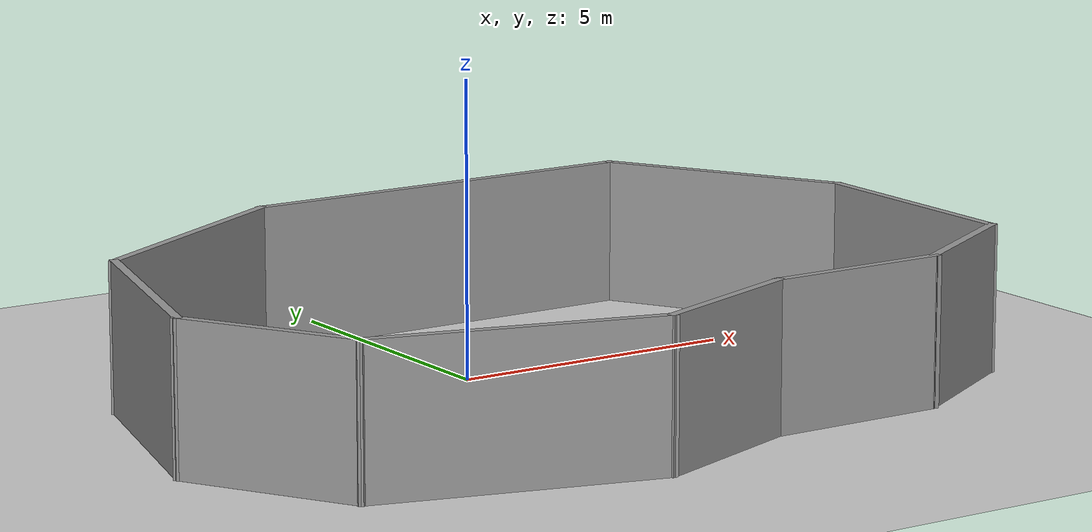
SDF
<sdf version="1.6">
 <world name="default">
  <physics name="default_physics" default="0" type="ode">
   <ode>
    <solver>
     <type>quick</type>
     <iters>20</iters>
     <sor>1</sor>
     <use_dynamic_moi_rescaling>0</use_dynamic_moi_rescaling>
    </solver>
    <constraints>
     <cfm>0</cfm>
     <erp>0.2</erp>
     <contact_max_correcting_vel>100</contact_max_correcting_vel>
     <contact_surface_layer>0</contact_surface_layer>
    </constraints>
   </ode>
   <max_step_size>0.001</max_step_size>
   <real_time_factor>1</real_time_factor>
   <real_time_update_rate>1000</real_time_update_rate>
  </physics>
  <light name="sun" type="directional">
   <pose>0 0 10 0 -0 0</pose>
   <diffuse>0.8 0.8 0.8 1</diffuse>
   <specular>0.1 0.1 0.1 1</specular>
   <attenuation>
    <range>1000</range>
    <constant>0.9</constant>
    <linear>0.01</linear>
    <quadratic>0.001</quadratic>
   </attenuation>
   <direction>-0.5 0.5 -1</direction>
  </light>
  <model name="ground_plane">
   <static>1</static>
   <link name="link">
    <collision name="collision">
     <geometry><plane><normal>0 0 1</normal><size>100 100</size></plane></geometry>
     <surface><friction><ode><mu>100</mu><mu2>50</mu2></ode></friction></surface>
    </collision>
    <visual name="visual">
     <cast_shadows>0</cast_shadows>
     <geometry><plane><normal>0 0 1</normal><size>100 100</size></plane></geometry>
     <material>
      <script><uri>file://media/materials/scripts/gazebo.material</uri><name>Gazebo/Grey</name></script>
     </material>
    </visual>
   </link>
  </model>
  <gravity>0 0 -9.8</gravity>
  <magnetic_field>6e-06 2.3e-05 -4.2e-05</magnetic_field>
  <atmosphere type="adiabatic"/>
  <scene><ambient>0.4 0.4 0.4 1</ambient><background>0.7 0.7 0.7 1</background><shadows>1</shadows></scene>
  <spherical_coordinates>
   <surface_model>EARTH_WGS84</surface_model>
   <latitude_deg>0</latitude_deg>
   <longitude_deg>0</longitude_deg>
   <elevation>0</elevation>
   <heading_deg>0</heading_deg>
  </spherical_coordinates>
  <model name="test1">
   <pose>0.294812 -1.56892 0 0 -0 0</pose>
   <link name="Wall_10">
    <collision name="Wall_10_Collision">
     <geometry><box><size>3.25 0.15 2.5</size></box></geometry>
     <pose>0 0 1.25 0 -0 0</pose>
    </collision>
    <visual name="Wall_10_Visual">
     <pose>0 0 1.25 0 -0 0</pose>
     <geometry><box><size>3.25 0.15 2.5</size></box></geometry>
     <material>
      <script><uri>file://media/materials/scripts/gazebo.material</uri><name>Gazebo/Grey</name></script>
      <ambient>1 1 1 1</ambient>
     </material>
    </visual>
    <pose>3.35827 -4.08529 0 0 -0 0</pose>
   </link>
   <link name="Wall_11">
    <collision name="Wall_11_Collision">
     <geometry><box><size>2.75 0.15 2.5</size></box></geometry>
     <pose>0 0 1.25 0 -0 0</pose>
    </collision>
    <visual name="Wall_11_Visual">
     <pose>0 0 1.25 0 -0 0</pose>
     <geometry><box><size>2.75 0.15 2.5</size></box></geometry>
     <material>
      <script><uri>file://media/materials/scripts/gazebo.material</uri><name>Gazebo/Grey</name></script>
      <ambient>1 1 1 1</ambient>
     </material>
    </visual>
    <pose>6.0341 -3.42008 0 0 -0 0.523599</pose>
   </link>
   <link name="Wall_13">
    <collision name="Wall_13_Collision">
     <geometry><box><size>4.25 0.15 2.5</size></box></geometry>
     <pose>0 0 1.25 0 -0 0</pose>
    </collision>
    <visual name="Wall_13_Visual">
     <pose>0 0 1.25 0 -0 0</pose>
     <geometry><box><size>4.25 0.15 2.5</size></box></geometry>
     <material>
      <script><uri>file://media/materials/scripts/gazebo.material</uri><name>Gazebo/Grey</name></script>
      <ambient>1 1 1 1</ambient>
     </material>
    </visual>
    <pose>7.15994 -0.720085 0 0 -0 1.5708</pose>
   </link>
   <link name="Wall_14">
    <collision name="Wall_14_Collision">
     <geometry><box><size>4.5 0.15 2.5</size></box></geometry>
     <pose>0 0 1.25 0 -0 0</pose>
    </collision>
    <visual name="Wall_14_Visual">
     <pose>0 0 1.25 0 -0 0</pose>
     <geometry><box><size>4.5 0.15 2.5</size></box></geometry>
     <material>
      <script><uri>file://media/materials/scripts/gazebo.material</uri><name>Gazebo/Grey</name></script>
      <ambient>1 1 1 1</ambient>
     </material>
    </visual>
    <pose>6.07244 3.21352 0 0 -0 2.0944</pose>
   </link>
   <link name="Wall_15">
    <collision name="Wall_15_Collision">
     <geometry><box><size>7.25 0.15 2.5</size></box></geometry>
     <pose>0 0 1.25 0 -0 0</pose>
    </collision>
    <visual name="Wall_15_Visual">
     <pose>0 0 1.25 0 -0 0</pose>
     <geometry><box><size>7.25 0.15 2.5</size></box></geometry>
     <material>
      <script><uri>file://media/materials/scripts/gazebo.material</uri><name>Gazebo/Grey</name></script>
      <ambient>1 1 1 1</ambient>
     </material>
    </visual>
    <pose>1.43494 5.09713 0 0 -0 3.14159</pose>
   </link>
   <link name="Wall_16">
    <collision name="Wall_16_Collision">
     <geometry><box><size>4.75 0.15 2.5</size></box></geometry>
     <pose>0 0 1.25 0 -0 0</pose>
    </collision>
    <visual name="Wall_16_Visual">
     <pose>0 0 1.25 0 -0 0</pose>
     <geometry><box><size>4.75 0.15 2.5</size></box></geometry>
     <material>
      <script><uri>file://media/materials/scripts/gazebo.material</uri><name>Gazebo/Grey</name></script>
      <ambient>1 1 1 1</ambient>
     </material>
    </visual>
    <pose>-4.10692 3.94713 0 0 0 -2.61799</pose>
   </link>
   <link name="Wall_17">
    <collision name="Wall_17_Collision">
     <geometry><box><size>4.25 0.15 2.5</size></box></geometry>
     <pose>0 0 1.25 0 -0 0</pose>
    </collision>
    <visual name="Wall_17_Visual">
     <pose>0 0 1.25 0 -0 0</pose>
     <geometry><box><size>4.25 0.15 2.5</size></box></geometry>
     <material>
      <script><uri>file://media/materials/scripts/gazebo.material</uri><name>Gazebo/Grey</name></script>
      <ambient>1 1 1 1</ambient>
     </material>
    </visual>
    <pose>-6.62936 0.816978 0 0 0 -1.8326</pose>
   </link>
   <link name="Wall_18">
    <collision name="Wall_18_Collision">
     <geometry><box><size>3.25 0.15 2.5</size></box></geometry>
     <pose>0 0 1.25 0 -0 0</pose>
    </collision>
    <visual name="Wall_18_Visual">
     <pose>0 0 1.25 0 -0 0</pose>
     <geometry><box><size>3.25 0.15 2.5</size></box></geometry>
     <material>
      <script><uri>file://media/materials/scripts/gazebo.material</uri><name>Gazebo/Grey</name></script>
      <ambient>1 1 1 1</ambient>
     </material>
    </visual>
    <pose>-6.38494 -2.50551 0 0 0 -1.0472</pose>
   </link>
   <link name="Wall_19">
    <collision name="Wall_19_Collision">
     <geometry><box><size>5 0.15 2.5</size></box></geometry>
     <pose>0 0 1.25 0 -0 0</pose>
    </collision>
    <visual name="Wall_19_Visual">
     <pose>0 0 1.25 0 -0 0</pose>
     <geometry><box><size>5 0.15 2.5</size></box></geometry>
     <material>
      <script><uri>file://media/materials/scripts/gazebo.material</uri><name>Gazebo/Grey</name></script>
      <ambient>1 1 1 1</ambient>
     </material>
    </visual>
    <pose>-3.26757 -4.47548 0 0 0 -0.261799</pose>
   </link>
   <link name="Wall_20">
    <collision name="Wall_20_Collision">
     <geometry><box><size>3.06682 0.15 2.5</size></box></geometry>
     <pose>0 0 1.25 0 -0 0</pose>
    </collision>
    <visual name="Wall_20_Visual">
     <pose>0 0 1.25 0 -0 0</pose>
     <geometry><box><size>3.06682 0.15 2.5</size></box></geometry>
     <material>
      <script><uri>file://media/materials/scripts/gazebo.material</uri><name>Gazebo/Grey</name></script>
      <ambient>1 1 1 1</ambient>
     </material>
    </visual>
    <pose>0.441537 -4.59421 0 0 -0 0.356452</pose>
   </link>
   <static>1</static>
  </model>
 </world>
</sdf>
